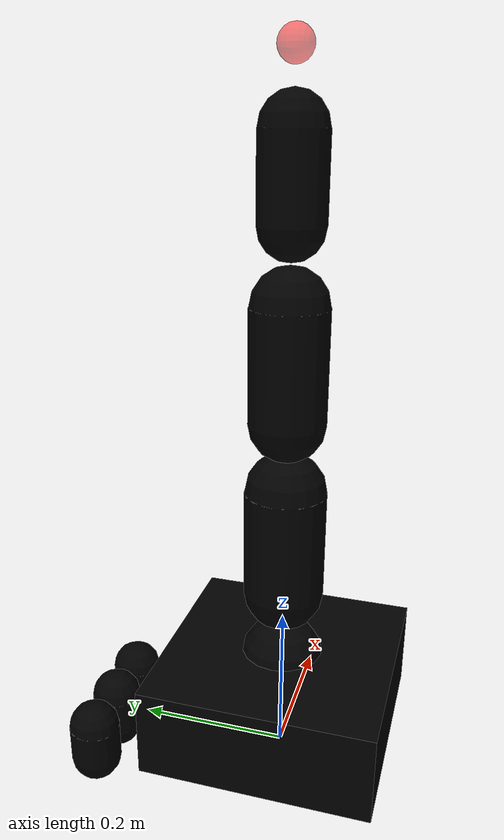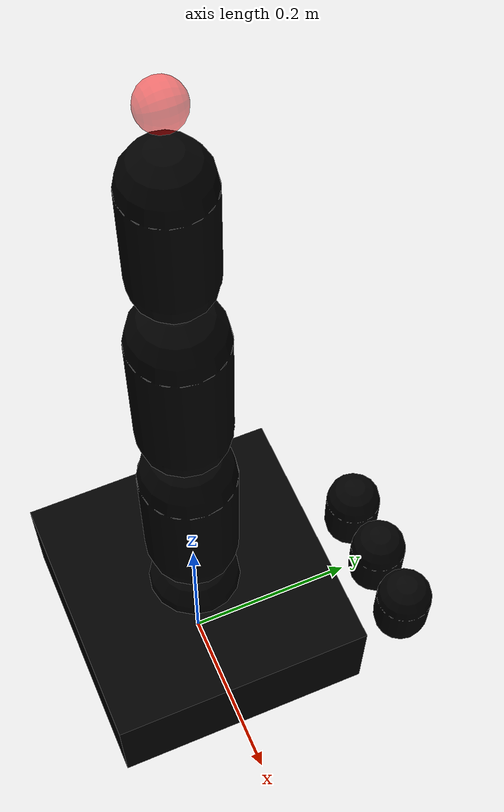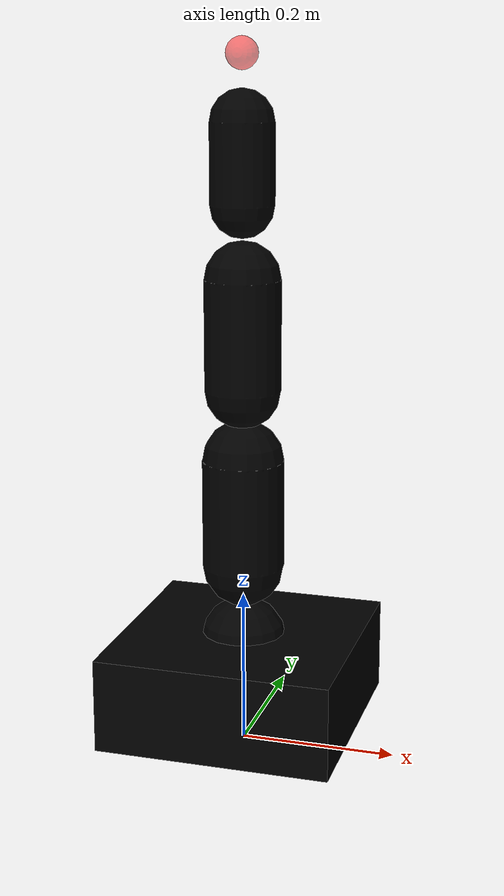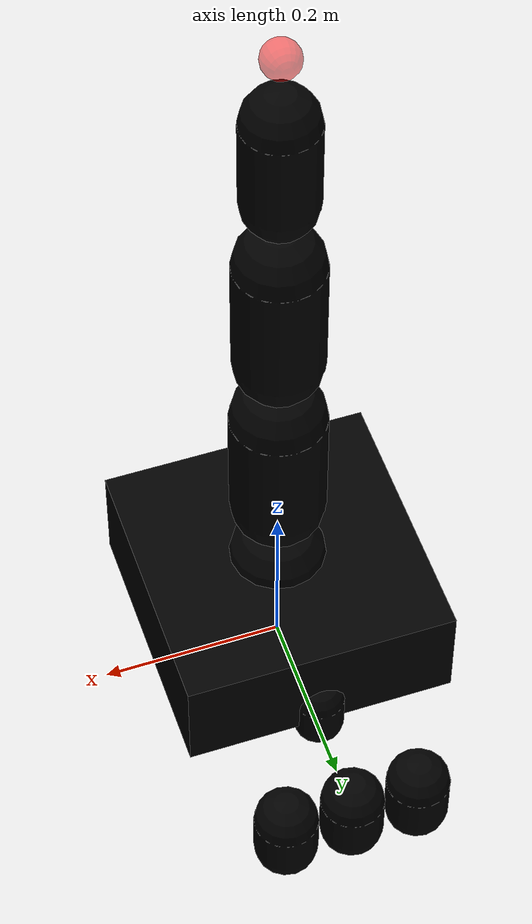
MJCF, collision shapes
<?xml version="1.0" encoding="utf-8"?>
<mujoco model="pmi_cable_arm_position">
  <compiler angle="radian" eulerseq="xyz" autolimits="true" meshdir="../../ros_ws/pmi_description3/meshes"/>

  <!-- 접촉 끔: 캡슐 근접 배치로 인한 자기/바닥 관통이 서보·등식을 망가뜨리는 것을 피함 (경로 데모용). -->
  <option timestep="0.001" gravity="0 0 -9.81" integrator="RK4" iterations="80" tolerance="1e-10">
    <flag contact="disable"/>
  </option>

  <visual>
    <headlight diffuse="0.8 0.8 0.8" ambient="0.3 0.3 0.3"/>
    <global azimuth="140" elevation="-20"/>
  </visual>

  <asset>
    <texture name="grid" type="2d" builtin="checker" width="512" height="512" rgb1=".1 .2 .3" rgb2=".2 .3 .4"/>
    <material name="grid" texture="grid" texrepeat="8 8" reflectance="0.2"/>
    <material name="link_vis" rgba="0.65 0.68 0.78 1"/>
    <material name="base_vis" rgba="0.79 0.82 0.93 1"/>
    <material name="act_vis" rgba="0.25 0.72 0.38 1"/>
    <mesh name="base_link_mesh" file="base_link.STL"/>
    <mesh name="link1_mesh" file="link1.STL"/>
    <mesh name="link2_mesh" file="link2.STL"/>
    <mesh name="link3_mesh" file="link3.STL"/>
    <mesh name="link4_mesh" file="link4.STL"/>
    <mesh name="q1_motor_mesh" file="q1_motor.STL"/>
    <mesh name="q2_motor_mesh" file="q2_motor.STL"/>
    <mesh name="q3_motor_mesh" file="q3_motor.STL"/>
    <mesh name="q4_motor_mesh" file="q4_motor.STL"/>
  </asset>

  <default>
    <joint damping="0.15" armature="0.02" frictionloss="0.02" limited="true"/>
    <geom type="capsule" condim="3" friction="1 0.005 0.0001" margin="0.001"/>
    <motor ctrllimited="true" ctrlrange="-35 35"/>
    <!-- Passive actuator shafts (not torque-actuated in env) -->
    <default class="act_shaft">
      <joint damping="0.03" armature="0.002" frictionloss="0.01" limited="true"/>
      <geom type="capsule" group="3" rgba="0 0 0 0"/>
    </default>
  </default>

  <worldbody>
    <light pos="0 0 3" dir="0 0 -1" diffuse="0.8 0.8 0.8" specular="0.3 0.3 0.3"/>
    <camera name="fixed" pos="1.5 -1.5 0.8" xyaxes="0.71 0.71 -0.71 0.71 0 0.45"/>

    <!-- Grid height: edit the z value in pos="0 0 z". -->

    <body name="base_link" pos="0 0 0.02" euler="0 0 3.1416">
      <inertial pos="0.00094692 -0.024204 0.07333" mass="2.1494"
        fullinertia="0.011337 0.022966 0.01236 -1.3746e-06 -1.6639e-06 -5.9757e-05"/>
      <geom name="base_geom" type="box" size="0.15 0.15 0.06" pos="0 0 0.07" group="3" rgba="0 0 0 0"/>
      <geom name="base_link_cad" type="mesh" mesh="base_link_mesh" material="base_vis" contype="0" conaffinity="0" group="2"/>

      <!-- Arm chain URDF q1_jnt..q4_jnt (MuJoCo names jnt1..jnt4) -->
      <body name="link1" pos="0 0 0" euler="3.14159265 0 0">
        <joint name="jnt1" type="hinge" axis="0 0 1" range="-3.141592653589793 3.141592653589793" actuatorfrcrange="-35 35"/>
        <inertial pos="0.0026336 -1.68446e-05 -0.111117" mass="10.0123496865811"
          fullinertia="0.0829601614566715 0.0391199810914461 0.0649458588226152 -0.000328089653994623 -0.000119428008908532 0.00000209012210735718"/>
        <geom name="link1_geom" type="capsule" fromto="0 0 0 0 0 -0.12" size="0.055" group="3" rgba="0 0 0 0"/>
        <geom name="link1_cad" type="mesh" mesh="link1_mesh" material="link_vis" contype="0" conaffinity="0" group="2"/>

        <body name="link2" pos="0 0 -0.22" euler="1.57079633 0 0">
          <joint name="jnt2" type="hinge" axis="0 0 -1" range="-1.5707963267948966 1.5707963267948966" actuatorfrcrange="-35 35"/>
          <inertial pos="6.90559e-05 -0.0851548 -0.00686211" mass="10.4391437674567"
            fullinertia="0.0780970193464117 0.0255871855807303 0.0745746466344453 0.0000353131298101708 -8.81620777833472e-06 0.00547282289489732"/>
          <geom name="link2_geom" type="capsule" fromto="0 0 0 0 -0.14 0" size="0.052" group="3" rgba="0 0 0 0"/>
          <geom name="link2_cad" type="mesh" mesh="link2_mesh" material="link_vis" contype="0" conaffinity="0" group="2"/>

          <body name="link3" pos="0 -0.23 0" euler="0 0 -1.57079633">
            <joint name="jnt3" type="hinge" axis="0 0 -1" range="-1.5707963267948966 1.5707963267948966" actuatorfrcrange="-35 35"/>
            <inertial pos="0.0969069 -3.20036e-05 -0.00548574" mass="10.3406497234359"
              fullinertia="0.0792872354716476 0.0227404242493157 0.0781409250910383 8.26042768438978e-06 5.43833216931251e-06 0.00431986606376804"/>
            <geom name="link3_geom" type="capsule" fromto="0 0 0 0.14 0 0" size="0.048" group="3" rgba="0 0 0 0"/>
            <geom name="link3_cad" type="mesh" mesh="link3_mesh" material="link_vis" contype="0" conaffinity="0" group="2"/>

            <body name="link4" pos="0.23 0 0" euler="-3.14159265 0 0">
              <joint name="jnt4" type="hinge" axis="0 0 -1" range="-1.5707963267948966 1.5707963267948966" actuatorfrcrange="-35 35"/>
              <inertial pos="0.0675884 0.00443192 0.000679202" mass="7.01416597186014"
                fullinertia="0.0393493190184971 0.0111764686166838 0.0410218257620852 -0.000926169916890393 -8.43406506016272e-06 0.000204330936352529"/>
              <geom name="link4_geom" type="capsule" fromto="0 0 0 0.10 0 0" size="0.04" group="3" rgba="0 0 0 0"/>
              <geom name="link4_cad" type="mesh" mesh="link4_mesh" material="link_vis" contype="0" conaffinity="0" group="2"/>
              <site name="ee" pos="0.18 0 0" size="0.02" rgba="1 0 0 0.5"/>
            </body>
          </body>
        </body>
      </body>

      <!-- Actuator branches URDF q*_act + link01..link04 -->
      <body name="link01" pos="0 -0.14 0" euler="-3.14159265 0 1.57079633" childclass="act_shaft">
        <joint name="q1_act" type="hinge" axis="0 0 1" range="-5.890486225480862 5.890486225480862"/>
        <inertial pos="0 0 -0.0061604" mass="0.031263"
          fullinertia="5.9458e-06 5.9458e-06 7.8696e-06 -3.8921e-14 -3.2055e-22 2.9435e-22"/>
        <geom name="link01_geom" type="capsule" fromto="0 0 0 0 0 -0.04" size="0.028"/>
        <geom name="link01_cad" type="mesh" mesh="q1_motor_mesh" material="act_vis" contype="0" conaffinity="0" group="2"/>
      </body>

      <body name="link02" pos="0 -0.25 0" euler="-3.14159265 0 1.57079633" childclass="act_shaft">
        <joint name="q2_act" type="hinge" axis="0 0 1" range="-10.471975511965978 10.471975511965978"/>
        <inertial pos="6.5945e-07 9.3491e-07 0.01996" mass="0.10842"
          fullinertia="2.8381e-05 2.8462e-05 4.6591e-05 1.7708e-08 3.5646e-09 8.7331e-10"/>
        <geom name="link02_geom" type="capsule" fromto="0 0 0 0 0 0.05" size="0.035"/>
        <geom name="link02_cad" type="mesh" mesh="q2_motor_mesh" material="act_vis" contype="0" conaffinity="0" group="2"/>
      </body>

      <body name="link03" pos="0.075 -0.25 0" euler="3.14159265 0 1.57079633" childclass="act_shaft">
        <joint name="q3_act" type="hinge" axis="0 0 1" range="-5.235987755982989 5.235987755982989"/>
        <inertial pos="-9.2316e-07 7.2482e-07 0.01996" mass="0.10842"
          fullinertia="2.8411e-05 2.8432e-05 4.6591e-05 -1.3701e-08 4.0204e-09 8.2403e-09"/>
        <geom name="link03_geom" type="capsule" fromto="0 0 0 0 0 0.05" size="0.035"/>
        <geom name="link03_cad" type="mesh" mesh="q3_motor_mesh" material="act_vis" contype="0" conaffinity="0" group="2"/>
      </body>

      <body name="link04" pos="-0.075 -0.25 0" euler="3.14159265 0 1.57079633" childclass="act_shaft">
        <joint name="q4_act" type="hinge" axis="0 0 1" range="-5.235987755982989 5.235987755982989"/>
        <inertial pos="-9.2316e-07 7.2482e-07 0.01996" mass="0.10842"
          fullinertia="2.8411e-05 2.8432e-05 4.6591e-05 -1.3701e-08 4.0204e-09 8.2403e-09"/>
        <geom name="link04_geom" type="capsule" fromto="0 0 0 0 0 0.05" size="0.035"/>
        <geom name="link04_cad" type="mesh" mesh="q4_motor_mesh" material="act_vis" contype="0" conaffinity="0" group="2"/>
      </body>
    </body>
  </worldbody>

  <!-- q1: belt/gear; q2–4: cable+pulley — rigid coupling q*_jnt = mult * q*_act (polycoef a1 = mult) -->
  <equality>
    <joint joint1="jnt1" joint2="q1_act" polycoef="0 0.5333333333333333 0 0 0" solref="0.002 1" solimp="0.99 0.999 0.0005"/>
    <joint joint1="jnt2" joint2="q2_act" polycoef="0 0.15 0 0 0" solref="0.002 1" solimp="0.99 0.999 0.0005"/>
    <joint joint1="jnt3" joint2="q3_act" polycoef="0 0.3 0 0 0" solref="0.002 1" solimp="0.99 0.999 0.0005"/>
    <joint joint1="jnt4" joint2="q4_act" polycoef="0 0.3 0 0 0" solref="0.002 1" solimp="0.99 0.999 0.0005"/>
  </equality>

  <!-- 구동축 서보 (belt/cable 등식과 일관). ctrlrange = 해당 q_act 관절 한계 (MJCF 상단 주석과 동일). -->
  <actuator>
    <position name="pos_q1_act" joint="q1_act" kp="180" kv="18" ctrllimited="true"
      ctrlrange="-5.890486225480862 5.890486225480862" forcerange="-200 200"/>
    <position name="pos_q2_act" joint="q2_act" kp="180" kv="18" ctrllimited="true"
      ctrlrange="-10.471975511965978 10.471975511965978" forcerange="-200 200"/>
    <position name="pos_q3_act" joint="q3_act" kp="180" kv="18" ctrllimited="true"
      ctrlrange="-5.235987755982989 5.235987755982989" forcerange="-200 200"/>
    <position name="pos_q4_act" joint="q4_act" kp="180" kv="18" ctrllimited="true"
      ctrlrange="-5.235987755982989 5.235987755982989" forcerange="-200 200"/>
  </actuator>

</mujoco>
